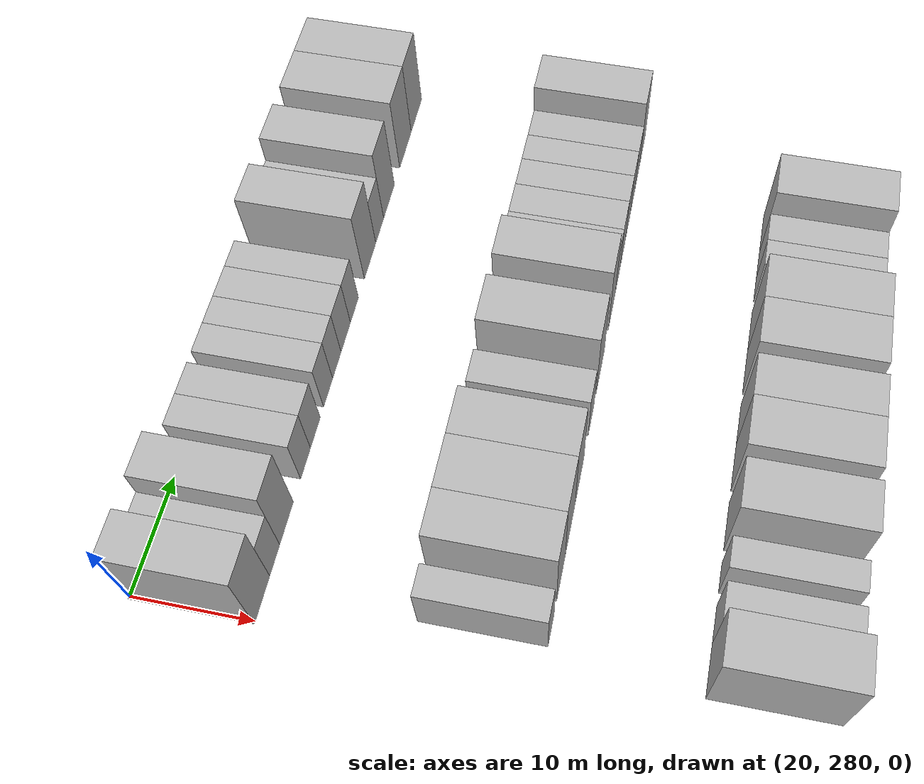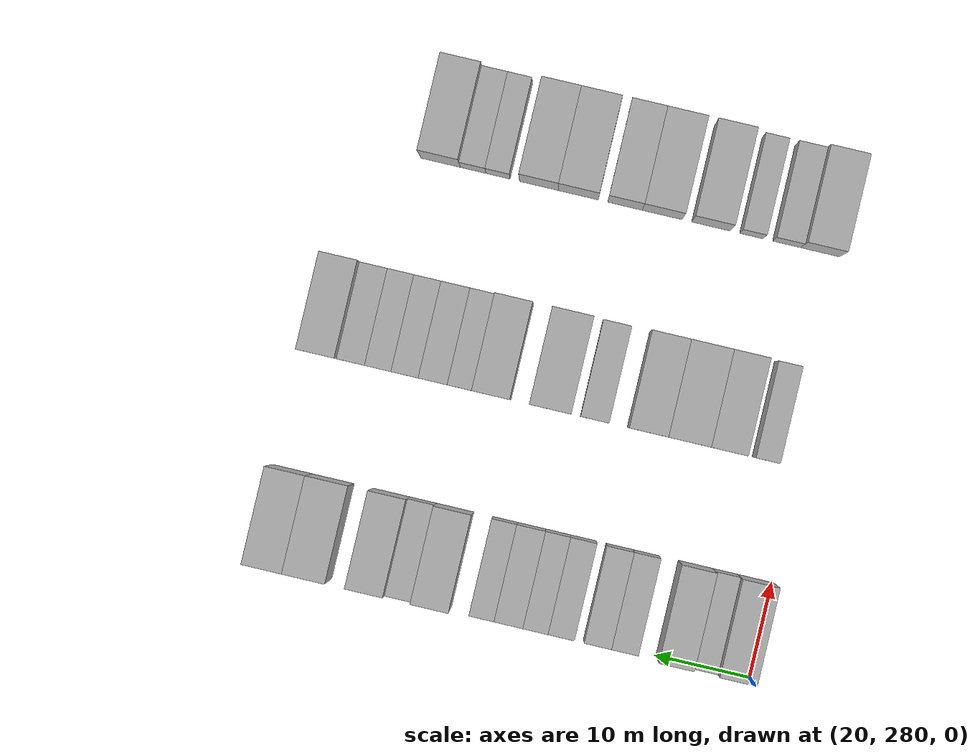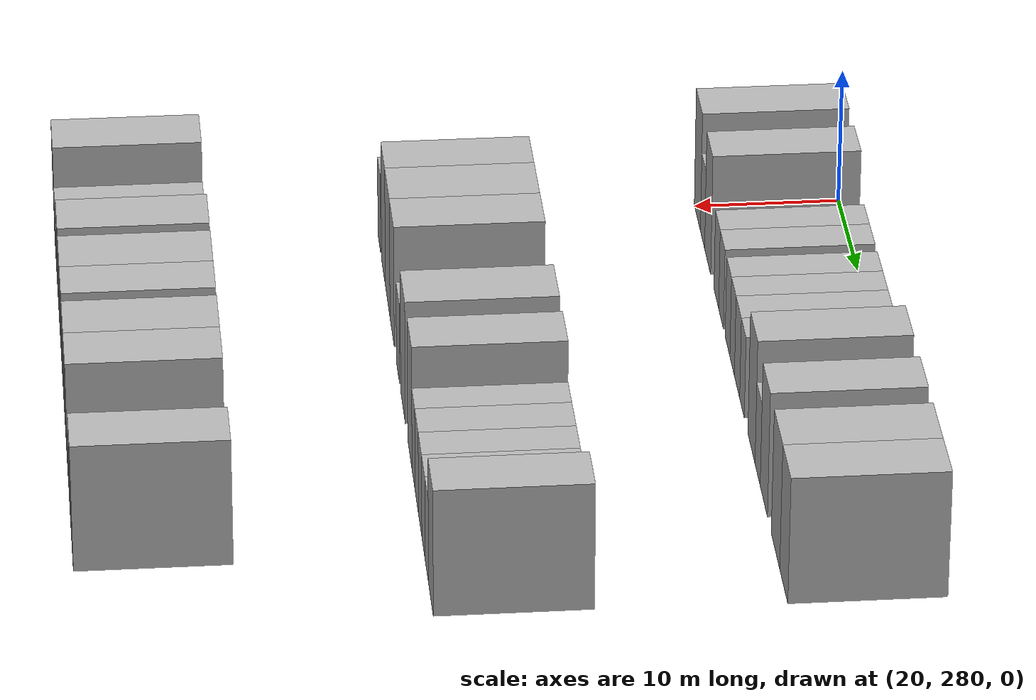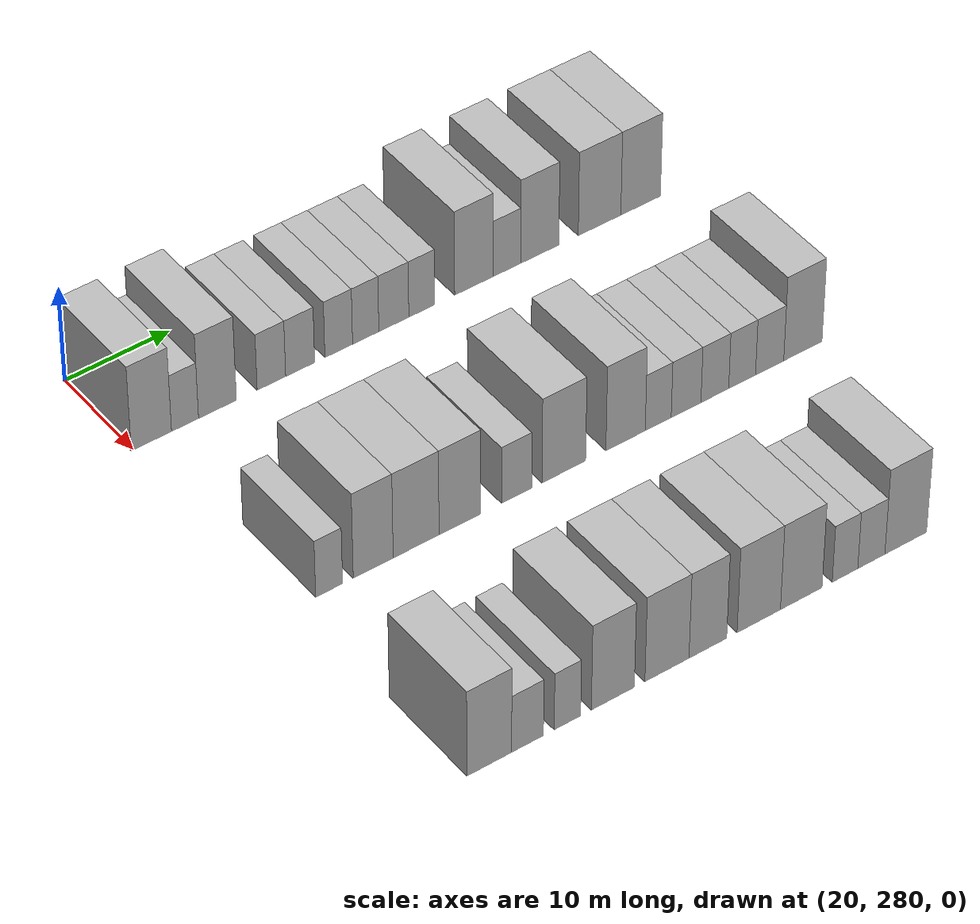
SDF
<sdf version="1.6">
 <world name="default">
  <model name="building_166">
   <static>1</static>
   <pose>25.0000 281.7110 0 0.000000 0.000000 0.000000</pose>
   <link name="link">
    <pose>0 0 4.50 0 0 0</pose>
    <collision name="collision"><geometry><box><size>10.0000 3.8083 9.0000</size></box></geometry></collision>
    <visual name="visual">
     <cast_shadows>0</cast_shadows>
     <geometry><box><size>10.0000 3.8083 9.0000</size></box></geometry>
     <material>
      <script>
       <uri>model://HANNAS_wall/materials/scripts</uri>
       <uri>model://HANNAS_wall/materials/textures</uri>
       <name>vrc/HANNAS_wall</name>
      </script>
     </material>
    </visual>
   </link>
  </model>
  <model name="building_167">
   <static>1</static>
   <pose>25.0000 284.9013 0 0.000000 0.000000 0.000000</pose>
   <link name="link">
    <pose>0 0 3.00 0 0 0</pose>
    <collision name="collision"><geometry><box><size>10.0000 2.5723 6.0000</size></box></geometry></collision>
    <visual name="visual">
     <cast_shadows>0</cast_shadows>
     <geometry><box><size>10.0000 2.5723 6.0000</size></box></geometry>
     <material>
      <script>
       <uri>model://HANNAS_wall/materials/scripts</uri>
       <uri>model://HANNAS_wall/materials/textures</uri>
       <name>vrc/HANNAS_wall</name>
      </script>
     </material>
    </visual>
   </link>
  </model>
  <model name="building_168">
   <static>1</static>
   <pose>25.0000 288.0024 0 0.000000 0.000000 0.000000</pose>
   <link name="link">
    <pose>0 0 4.50 0 0 0</pose>
    <collision name="collision"><geometry><box><size>10.0000 3.6300 9.0000</size></box></geometry></collision>
    <visual name="visual">
     <cast_shadows>0</cast_shadows>
     <geometry><box><size>10.0000 3.6300 9.0000</size></box></geometry>
     <material>
      <script>
       <uri>model://HANNAS_wall/materials/scripts</uri>
       <uri>model://HANNAS_wall/materials/textures</uri>
       <name>vrc/HANNAS_wall</name>
      </script>
     </material>
    </visual>
   </link>
  </model>
  <model name="building_169">
   <static>1</static>
   <pose>25.0000 293.1995 0 0.000000 0.000000 0.000000</pose>
   <link name="link">
    <pose>0 0 3.00 0 0 0</pose>
    <collision name="collision"><geometry><box><size>10.0000 2.7642 6.0000</size></box></geometry></collision>
    <visual name="visual">
     <cast_shadows>0</cast_shadows>
     <geometry><box><size>10.0000 2.7642 6.0000</size></box></geometry>
     <material>
      <script>
       <uri>model://HANNAS_wall/materials/scripts</uri>
       <uri>model://HANNAS_wall/materials/textures</uri>
       <name>vrc/HANNAS_wall</name>
      </script>
     </material>
    </visual>
   </link>
  </model>
  <model name="building_170">
   <static>1</static>
   <pose>25.0000 295.9941 0 0.000000 0.000000 0.000000</pose>
   <link name="link">
    <pose>0 0 3.00 0 0 0</pose>
    <collision name="collision"><geometry><box><size>10.0000 2.8248 6.0000</size></box></geometry></collision>
    <visual name="visual">
     <cast_shadows>0</cast_shadows>
     <geometry><box><size>10.0000 2.8248 6.0000</size></box></geometry>
     <material>
      <script>
       <uri>model://HANNAS_wall/materials/scripts</uri>
       <uri>model://HANNAS_wall/materials/textures</uri>
       <name>vrc/HANNAS_wall</name>
      </script>
     </material>
    </visual>
   </link>
  </model>
  <model name="building_171">
   <static>1</static>
   <pose>25.0000 299.7646 0 0.000000 0.000000 0.000000</pose>
   <link name="link">
    <pose>0 0 3.00 0 0 0</pose>
    <collision name="collision"><geometry><box><size>10.0000 2.7162 6.0000</size></box></geometry></collision>
    <visual name="visual">
     <cast_shadows>0</cast_shadows>
     <geometry><box><size>10.0000 2.7162 6.0000</size></box></geometry>
     <material>
      <script>
       <uri>model://HANNAS_wall/materials/scripts</uri>
       <uri>model://HANNAS_wall/materials/textures</uri>
       <name>vrc/HANNAS_wall</name>
      </script>
     </material>
    </visual>
   </link>
  </model>
  <model name="building_172">
   <static>1</static>
   <pose>25.0000 302.4198 0 0.000000 0.000000 0.000000</pose>
   <link name="link">
    <pose>0 0 3.00 0 0 0</pose>
    <collision name="collision"><geometry><box><size>10.0000 2.5943 6.0000</size></box></geometry></collision>
    <visual name="visual">
     <cast_shadows>0</cast_shadows>
     <geometry><box><size>10.0000 2.5943 6.0000</size></box></geometry>
     <material>
      <script>
       <uri>model://HANNAS_wall/materials/scripts</uri>
       <uri>model://HANNAS_wall/materials/textures</uri>
       <name>vrc/HANNAS_wall</name>
      </script>
     </material>
    </visual>
   </link>
  </model>
  <model name="building_173">
   <static>1</static>
   <pose>25.0000 305.2056 0 0.000000 0.000000 0.000000</pose>
   <link name="link">
    <pose>0 0 3.00 0 0 0</pose>
    <collision name="collision"><geometry><box><size>10.0000 2.9773 6.0000</size></box></geometry></collision>
    <visual name="visual">
     <cast_shadows>0</cast_shadows>
     <geometry><box><size>10.0000 2.9773 6.0000</size></box></geometry>
     <material>
      <script>
       <uri>model://HANNAS_wall/materials/scripts</uri>
       <uri>model://HANNAS_wall/materials/textures</uri>
       <name>vrc/HANNAS_wall</name>
      </script>
     </material>
    </visual>
   </link>
  </model>
  <model name="building_174">
   <static>1</static>
   <pose>25.0000 307.9878 0 0.000000 0.000000 0.000000</pose>
   <link name="link">
    <pose>0 0 3.00 0 0 0</pose>
    <collision name="collision"><geometry><box><size>10.0000 2.5871 6.0000</size></box></geometry></collision>
    <visual name="visual">
     <cast_shadows>0</cast_shadows>
     <geometry><box><size>10.0000 2.5871 6.0000</size></box></geometry>
     <material>
      <script>
       <uri>model://HANNAS_wall/materials/scripts</uri>
       <uri>model://HANNAS_wall/materials/textures</uri>
       <name>vrc/HANNAS_wall</name>
      </script>
     </material>
    </visual>
   </link>
  </model>
  <model name="building_175">
   <static>1</static>
   <pose>25.0000 313.2307 0 0.000000 0.000000 0.000000</pose>
   <link name="link">
    <pose>0 0 4.50 0 0 0</pose>
    <collision name="collision"><geometry><box><size>10.0000 3.8987 9.0000</size></box></geometry></collision>
    <visual name="visual">
     <cast_shadows>0</cast_shadows>
     <geometry><box><size>10.0000 3.8987 9.0000</size></box></geometry>
     <material>
      <script>
       <uri>model://HANNAS_wall/materials/scripts</uri>
       <uri>model://HANNAS_wall/materials/textures</uri>
       <name>vrc/HANNAS_wall</name>
      </script>
     </material>
    </visual>
   </link>
  </model>
  <model name="building_176">
   <static>1</static>
   <pose>25.0000 316.5735 0 0.000000 0.000000 0.000000</pose>
   <link name="link">
    <pose>0 0 3.00 0 0 0</pose>
    <collision name="collision"><geometry><box><size>10.0000 2.7870 6.0000</size></box></geometry></collision>
    <visual name="visual">
     <cast_shadows>0</cast_shadows>
     <geometry><box><size>10.0000 2.7870 6.0000</size></box></geometry>
     <material>
      <script>
       <uri>model://HANNAS_wall/materials/scripts</uri>
       <uri>model://HANNAS_wall/materials/textures</uri>
       <name>vrc/HANNAS_wall</name>
      </script>
     </material>
    </visual>
   </link>
  </model>
  <model name="building_177">
   <static>1</static>
   <pose>25.0000 319.9131 0 0.000000 0.000000 0.000000</pose>
   <link name="link">
    <pose>0 0 4.50 0 0 0</pose>
    <collision name="collision"><geometry><box><size>10.0000 3.8922 9.0000</size></box></geometry></collision>
    <visual name="visual">
     <cast_shadows>0</cast_shadows>
     <geometry><box><size>10.0000 3.8922 9.0000</size></box></geometry>
     <material>
      <script>
       <uri>model://HANNAS_wall/materials/scripts</uri>
       <uri>model://HANNAS_wall/materials/textures</uri>
       <name>vrc/HANNAS_wall</name>
      </script>
     </material>
    </visual>
   </link>
  </model>
  <model name="building_178">
   <static>1</static>
   <pose>25.0000 326.0613 0 0.000000 0.000000 0.000000</pose>
   <link name="link">
    <pose>0 0 4.50 0 0 0</pose>
    <collision name="collision"><geometry><box><size>10.0000 4.4042 9.0000</size></box></geometry></collision>
    <visual name="visual">
     <cast_shadows>0</cast_shadows>
     <geometry><box><size>10.0000 4.4042 9.0000</size></box></geometry>
     <material>
      <script>
       <uri>model://HANNAS_wall/materials/scripts</uri>
       <uri>model://HANNAS_wall/materials/textures</uri>
       <name>vrc/HANNAS_wall</name>
      </script>
     </material>
    </visual>
   </link>
  </model>
  <model name="building_179">
   <static>1</static>
   <pose>25.0000 330.3291 0 0.000000 0.000000 0.000000</pose>
   <link name="link">
    <pose>0 0 4.50 0 0 0</pose>
    <collision name="collision"><geometry><box><size>10.0000 4.1312 9.0000</size></box></geometry></collision>
    <visual name="visual">
     <cast_shadows>0</cast_shadows>
     <geometry><box><size>10.0000 4.1312 9.0000</size></box></geometry>
     <material>
      <script>
       <uri>model://HANNAS_wall/materials/scripts</uri>
       <uri>model://HANNAS_wall/materials/textures</uri>
       <name>vrc/HANNAS_wall</name>
      </script>
     </material>
    </visual>
   </link>
  </model>
  <model name="building_358">
   <static>1</static>
   <pose>47.0000 283.6261 0 0.000000 0.000000 0.000000</pose>
   <link name="link">
    <pose>0 0 3.00 0 0 0</pose>
    <collision name="collision"><geometry><box><size>10.0000 2.5145 6.0000</size></box></geometry></collision>
    <visual name="visual">
     <cast_shadows>0</cast_shadows>
     <geometry><box><size>10.0000 2.5145 6.0000</size></box></geometry>
     <material>
      <script>
       <uri>model://HANNAS_wall/materials/scripts</uri>
       <uri>model://HANNAS_wall/materials/textures</uri>
       <name>vrc/HANNAS_wall</name>
      </script>
     </material>
    </visual>
   </link>
  </model>
  <model name="building_359">
   <static>1</static>
   <pose>47.0000 287.7657 0 0.000000 0.000000 0.000000</pose>
   <link name="link">
    <pose>0 0 4.50 0 0 0</pose>
    <collision name="collision"><geometry><box><size>10.0000 3.7648 9.0000</size></box></geometry></collision>
    <visual name="visual">
     <cast_shadows>0</cast_shadows>
     <geometry><box><size>10.0000 3.7648 9.0000</size></box></geometry>
     <material>
      <script>
       <uri>model://HANNAS_wall/materials/scripts</uri>
       <uri>model://HANNAS_wall/materials/textures</uri>
       <name>vrc/HANNAS_wall</name>
      </script>
     </material>
    </visual>
   </link>
  </model>
  <model name="building_360">
   <static>1</static>
   <pose>47.0000 291.8306 0 0.000000 0.000000 0.000000</pose>
   <link name="link">
    <pose>0 0 4.50 0 0 0</pose>
    <collision name="collision"><geometry><box><size>10.0000 4.3651 9.0000</size></box></geometry></collision>
    <visual name="visual">
     <cast_shadows>0</cast_shadows>
     <geometry><box><size>10.0000 4.3651 9.0000</size></box></geometry>
     <material>
      <script>
       <uri>model://HANNAS_wall/materials/scripts</uri>
       <uri>model://HANNAS_wall/materials/textures</uri>
       <name>vrc/HANNAS_wall</name>
      </script>
     </material>
    </visual>
   </link>
  </model>
  <model name="building_361">
   <static>1</static>
   <pose>47.0000 296.0141 0 0.000000 0.000000 0.000000</pose>
   <link name="link">
    <pose>0 0 4.50 0 0 0</pose>
    <collision name="collision"><geometry><box><size>10.0000 4.0019 9.0000</size></box></geometry></collision>
    <visual name="visual">
     <cast_shadows>0</cast_shadows>
     <geometry><box><size>10.0000 4.0019 9.0000</size></box></geometry>
     <material>
      <script>
       <uri>model://HANNAS_wall/materials/scripts</uri>
       <uri>model://HANNAS_wall/materials/textures</uri>
       <name>vrc/HANNAS_wall</name>
      </script>
     </material>
    </visual>
   </link>
  </model>
  <model name="building_362">
   <static>1</static>
   <pose>47.0000 301.4804 0 0.000000 0.000000 0.000000</pose>
   <link name="link">
    <pose>0 0 3.00 0 0 0</pose>
    <collision name="collision"><geometry><box><size>10.0000 2.9306 6.0000</size></box></geometry></collision>
    <visual name="visual">
     <cast_shadows>0</cast_shadows>
     <geometry><box><size>10.0000 2.9306 6.0000</size></box></geometry>
     <material>
      <script>
       <uri>model://HANNAS_wall/materials/scripts</uri>
       <uri>model://HANNAS_wall/materials/textures</uri>
       <name>vrc/HANNAS_wall</name>
      </script>
     </material>
    </visual>
   </link>
  </model>
  <model name="building_363">
   <static>1</static>
   <pose>47.0000 306.0813 0 0.000000 0.000000 0.000000</pose>
   <link name="link">
    <pose>0 0 4.50 0 0 0</pose>
    <collision name="collision"><geometry><box><size>10.0000 4.2711 9.0000</size></box></geometry></collision>
    <visual name="visual">
     <cast_shadows>0</cast_shadows>
     <geometry><box><size>10.0000 4.2711 9.0000</size></box></geometry>
     <material>
      <script>
       <uri>model://HANNAS_wall/materials/scripts</uri>
       <uri>model://HANNAS_wall/materials/textures</uri>
       <name>vrc/HANNAS_wall</name>
      </script>
     </material>
    </visual>
   </link>
  </model>
  <model name="building_364">
   <static>1</static>
   <pose>47.0000 312.1673 0 0.000000 0.000000 0.000000</pose>
   <link name="link">
    <pose>0 0 4.50 0 0 0</pose>
    <collision name="collision"><geometry><box><size>10.0000 3.9009 9.0000</size></box></geometry></collision>
    <visual name="visual">
     <cast_shadows>0</cast_shadows>
     <geometry><box><size>10.0000 3.9009 9.0000</size></box></geometry>
     <material>
      <script>
       <uri>model://HANNAS_wall/materials/scripts</uri>
       <uri>model://HANNAS_wall/materials/textures</uri>
       <name>vrc/HANNAS_wall</name>
      </script>
     </material>
    </visual>
   </link>
  </model>
  <model name="building_365">
   <static>1</static>
   <pose>47.0000 315.4169 0 0.000000 0.000000 0.000000</pose>
   <link name="link">
    <pose>0 0 3.00 0 0 0</pose>
    <collision name="collision"><geometry><box><size>10.0000 2.5984 6.0000</size></box></geometry></collision>
    <visual name="visual">
     <cast_shadows>0</cast_shadows>
     <geometry><box><size>10.0000 2.5984 6.0000</size></box></geometry>
     <material>
      <script>
       <uri>model://HANNAS_wall/materials/scripts</uri>
       <uri>model://HANNAS_wall/materials/textures</uri>
       <name>vrc/HANNAS_wall</name>
      </script>
     </material>
    </visual>
   </link>
  </model>
  <model name="building_366">
   <static>1</static>
   <pose>47.0000 318.2119 0 0.000000 0.000000 0.000000</pose>
   <link name="link">
    <pose>0 0 3.00 0 0 0</pose>
    <collision name="collision"><geometry><box><size>10.0000 2.9916 6.0000</size></box></geometry></collision>
    <visual name="visual">
     <cast_shadows>0</cast_shadows>
     <geometry><box><size>10.0000 2.9916 6.0000</size></box></geometry>
     <material>
      <script>
       <uri>model://HANNAS_wall/materials/scripts</uri>
       <uri>model://HANNAS_wall/materials/textures</uri>
       <name>vrc/HANNAS_wall</name>
      </script>
     </material>
    </visual>
   </link>
  </model>
  <model name="building_367">
   <static>1</static>
   <pose>47.0000 321.1097 0 0.000000 0.000000 0.000000</pose>
   <link name="link">
    <pose>0 0 3.00 0 0 0</pose>
    <collision name="collision"><geometry><box><size>10.0000 2.8039 6.0000</size></box></geometry></collision>
    <visual name="visual">
     <cast_shadows>0</cast_shadows>
     <geometry><box><size>10.0000 2.8039 6.0000</size></box></geometry>
     <material>
      <script>
       <uri>model://HANNAS_wall/materials/scripts</uri>
       <uri>model://HANNAS_wall/materials/textures</uri>
       <name>vrc/HANNAS_wall</name>
      </script>
     </material>
    </visual>
   </link>
  </model>
  <model name="building_368">
   <static>1</static>
   <pose>47.0000 323.8746 0 0.000000 0.000000 0.000000</pose>
   <link name="link">
    <pose>0 0 3.00 0 0 0</pose>
    <collision name="collision"><geometry><box><size>10.0000 2.7260 6.0000</size></box></geometry></collision>
    <visual name="visual">
     <cast_shadows>0</cast_shadows>
     <geometry><box><size>10.0000 2.7260 6.0000</size></box></geometry>
     <material>
      <script>
       <uri>model://HANNAS_wall/materials/scripts</uri>
       <uri>model://HANNAS_wall/materials/textures</uri>
       <name>vrc/HANNAS_wall</name>
      </script>
     </material>
    </visual>
   </link>
  </model>
  <model name="building_369">
   <static>1</static>
   <pose>47.0000 326.6795 0 0.000000 0.000000 0.000000</pose>
   <link name="link">
    <pose>0 0 3.00 0 0 0</pose>
    <collision name="collision"><geometry><box><size>10.0000 2.8840 6.0000</size></box></geometry></collision>
    <visual name="visual">
     <cast_shadows>0</cast_shadows>
     <geometry><box><size>10.0000 2.8840 6.0000</size></box></geometry>
     <material>
      <script>
       <uri>model://HANNAS_wall/materials/scripts</uri>
       <uri>model://HANNAS_wall/materials/textures</uri>
       <name>vrc/HANNAS_wall</name>
      </script>
     </material>
    </visual>
   </link>
  </model>
  <model name="building_370">
   <static>1</static>
   <pose>47.0000 330.0916 0 0.000000 0.000000 0.000000</pose>
   <link name="link">
    <pose>0 0 4.50 0 0 0</pose>
    <collision name="collision"><geometry><box><size>10.0000 3.9401 9.0000</size></box></geometry></collision>
    <visual name="visual">
     <cast_shadows>0</cast_shadows>
     <geometry><box><size>10.0000 3.9401 9.0000</size></box></geometry>
     <material>
      <script>
       <uri>model://HANNAS_wall/materials/scripts</uri>
       <uri>model://HANNAS_wall/materials/textures</uri>
       <name>vrc/HANNAS_wall</name>
      </script>
     </material>
    </visual>
   </link>
  </model>
  <model name="building_544">
   <static>1</static>
   <pose>69.0000 282.8954 0 0.000000 0.000000 0.000000</pose>
   <link name="link">
    <pose>0 0 4.50 0 0 0</pose>
    <collision name="collision"><geometry><box><size>10.0000 4.1082 9.0000</size></box></geometry></collision>
    <visual name="visual">
     <cast_shadows>0</cast_shadows>
     <geometry><box><size>10.0000 4.1082 9.0000</size></box></geometry>
     <material>
      <script>
       <uri>model://HANNAS_wall/materials/scripts</uri>
       <uri>model://HANNAS_wall/materials/textures</uri>
       <name>vrc/HANNAS_wall</name>
      </script>
     </material>
    </visual>
   </link>
  </model>
  <model name="building_545">
   <static>1</static>
   <pose>69.0000 286.4210 0 0.000000 0.000000 0.000000</pose>
   <link name="link">
    <pose>0 0 3.00 0 0 0</pose>
    <collision name="collision"><geometry><box><size>10.0000 2.9429 6.0000</size></box></geometry></collision>
    <visual name="visual">
     <cast_shadows>0</cast_shadows>
     <geometry><box><size>10.0000 2.9429 6.0000</size></box></geometry>
     <material>
      <script>
       <uri>model://HANNAS_wall/materials/scripts</uri>
       <uri>model://HANNAS_wall/materials/textures</uri>
       <name>vrc/HANNAS_wall</name>
      </script>
     </material>
    </visual>
   </link>
  </model>
  <model name="building_546">
   <static>1</static>
   <pose>69.0000 290.1252 0 0.000000 0.000000 0.000000</pose>
   <link name="link">
    <pose>0 0 3.00 0 0 0</pose>
    <collision name="collision"><geometry><box><size>10.0000 2.4654 6.0000</size></box></geometry></collision>
    <visual name="visual">
     <cast_shadows>0</cast_shadows>
     <geometry><box><size>10.0000 2.4654 6.0000</size></box></geometry>
     <material>
      <script>
       <uri>model://HANNAS_wall/materials/scripts</uri>
       <uri>model://HANNAS_wall/materials/textures</uri>
       <name>vrc/HANNAS_wall</name>
      </script>
     </material>
    </visual>
   </link>
  </model>
  <model name="building_547">
   <static>1</static>
   <pose>69.0000 294.3831 0 0.000000 0.000000 0.000000</pose>
   <link name="link">
    <pose>0 0 4.50 0 0 0</pose>
    <collision name="collision"><geometry><box><size>10.0000 4.0504 9.0000</size></box></geometry></collision>
    <visual name="visual">
     <cast_shadows>0</cast_shadows>
     <geometry><box><size>10.0000 4.0504 9.0000</size></box></geometry>
     <material>
      <script>
       <uri>model://HANNAS_wall/materials/scripts</uri>
       <uri>model://HANNAS_wall/materials/textures</uri>
       <name>vrc/HANNAS_wall</name>
      </script>
     </material>
    </visual>
   </link>
  </model>
  <model name="building_548">
   <static>1</static>
   <pose>69.0000 299.5077 0 0.000000 0.000000 0.000000</pose>
   <link name="link">
    <pose>0 0 4.50 0 0 0</pose>
    <collision name="collision"><geometry><box><size>10.0000 4.1988 9.0000</size></box></geometry></collision>
    <visual name="visual">
     <cast_shadows>0</cast_shadows>
     <geometry><box><size>10.0000 4.1988 9.0000</size></box></geometry>
     <material>
      <script>
       <uri>model://HANNAS_wall/materials/scripts</uri>
       <uri>model://HANNAS_wall/materials/textures</uri>
       <name>vrc/HANNAS_wall</name>
      </script>
     </material>
    </visual>
   </link>
  </model>
  <model name="building_549">
   <static>1</static>
   <pose>69.0000 303.4177 0 0.000000 0.000000 0.000000</pose>
   <link name="link">
    <pose>0 0 4.50 0 0 0</pose>
    <collision name="collision"><geometry><box><size>10.0000 3.6212 9.0000</size></box></geometry></collision>
    <visual name="visual">
     <cast_shadows>0</cast_shadows>
     <geometry><box><size>10.0000 3.6212 9.0000</size></box></geometry>
     <material>
      <script>
       <uri>model://HANNAS_wall/materials/scripts</uri>
       <uri>model://HANNAS_wall/materials/textures</uri>
       <name>vrc/HANNAS_wall</name>
      </script>
     </material>
    </visual>
   </link>
  </model>
  <model name="building_550">
   <static>1</static>
   <pose>69.0000 308.3317 0 0.000000 0.000000 0.000000</pose>
   <link name="link">
    <pose>0 0 4.50 0 0 0</pose>
    <collision name="collision"><geometry><box><size>10.0000 4.2067 9.0000</size></box></geometry></collision>
    <visual name="visual">
     <cast_shadows>0</cast_shadows>
     <geometry><box><size>10.0000 4.2067 9.0000</size></box></geometry>
     <material>
      <script>
       <uri>model://HANNAS_wall/materials/scripts</uri>
       <uri>model://HANNAS_wall/materials/textures</uri>
       <name>vrc/HANNAS_wall</name>
      </script>
     </material>
    </visual>
   </link>
  </model>
  <model name="building_551">
   <static>1</static>
   <pose>69.0000 312.4737 0 0.000000 0.000000 0.000000</pose>
   <link name="link">
    <pose>0 0 4.50 0 0 0</pose>
    <collision name="collision"><geometry><box><size>10.0000 4.0772 9.0000</size></box></geometry></collision>
    <visual name="visual">
     <cast_shadows>0</cast_shadows>
     <geometry><box><size>10.0000 4.0772 9.0000</size></box></geometry>
     <material>
      <script>
       <uri>model://HANNAS_wall/materials/scripts</uri>
       <uri>model://HANNAS_wall/materials/textures</uri>
       <name>vrc/HANNAS_wall</name>
      </script>
     </material>
    </visual>
   </link>
  </model>
  <model name="building_552">
   <static>1</static>
   <pose>69.0000 316.7752 0 0.000000 0.000000 0.000000</pose>
   <link name="link">
    <pose>0 0 3.00 0 0 0</pose>
    <collision name="collision"><geometry><box><size>10.0000 2.5257 6.0000</size></box></geometry></collision>
    <visual name="visual">
     <cast_shadows>0</cast_shadows>
     <geometry><box><size>10.0000 2.5257 6.0000</size></box></geometry>
     <material>
      <script>
       <uri>model://HANNAS_wall/materials/scripts</uri>
       <uri>model://HANNAS_wall/materials/textures</uri>
       <name>vrc/HANNAS_wall</name>
      </script>
     </material>
    </visual>
   </link>
  </model>
  <model name="building_553">
   <static>1</static>
   <pose>69.0000 319.3839 0 0.000000 0.000000 0.000000</pose>
   <link name="link">
    <pose>0 0 3.00 0 0 0</pose>
    <collision name="collision"><geometry><box><size>10.0000 2.6917 6.0000</size></box></geometry></collision>
    <visual name="visual">
     <cast_shadows>0</cast_shadows>
     <geometry><box><size>10.0000 2.6917 6.0000</size></box></geometry>
     <material>
      <script>
       <uri>model://HANNAS_wall/materials/scripts</uri>
       <uri>model://HANNAS_wall/materials/textures</uri>
       <name>vrc/HANNAS_wall</name>
      </script>
     </material>
    </visual>
   </link>
  </model>
  <model name="building_554">
   <static>1</static>
   <pose>69.0000 322.8153 0 0.000000 0.000000 0.000000</pose>
   <link name="link">
    <pose>0 0 4.50 0 0 0</pose>
    <collision name="collision"><geometry><box><size>10.0000 4.1712 9.0000</size></box></geometry></collision>
    <visual name="visual">
     <cast_shadows>0</cast_shadows>
     <geometry><box><size>10.0000 4.1712 9.0000</size></box></geometry>
     <material>
      <script>
       <uri>model://HANNAS_wall/materials/scripts</uri>
       <uri>model://HANNAS_wall/materials/textures</uri>
       <name>vrc/HANNAS_wall</name>
      </script>
     </material>
    </visual>
   </link>
  </model>
 </world>
</sdf>
